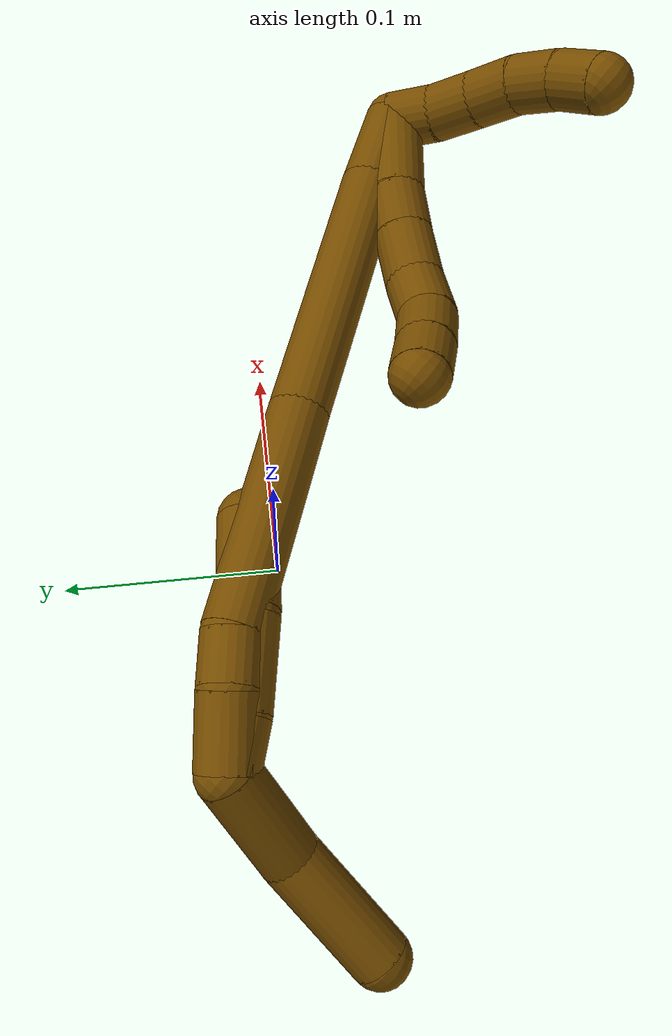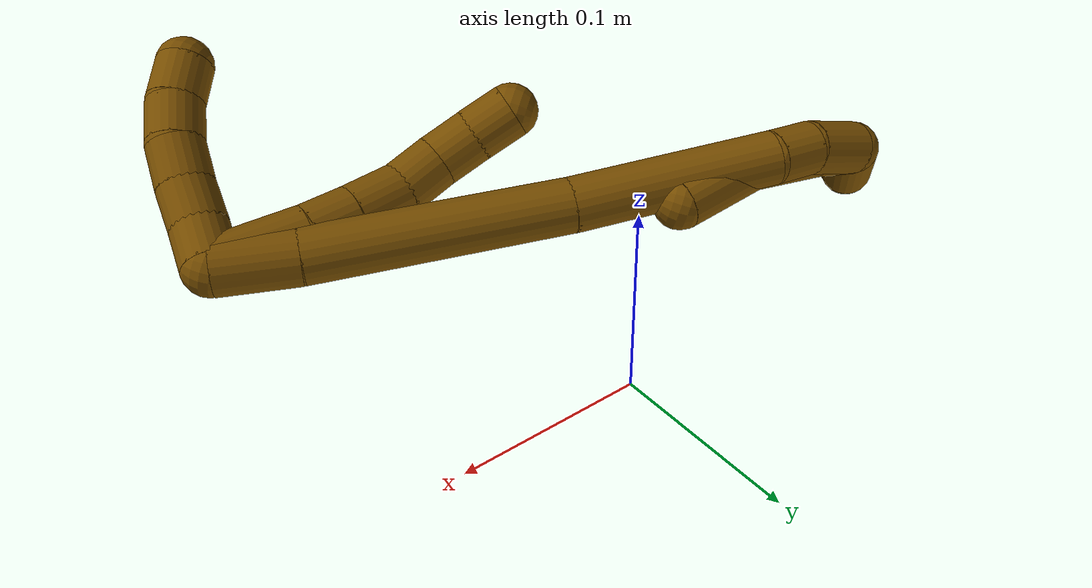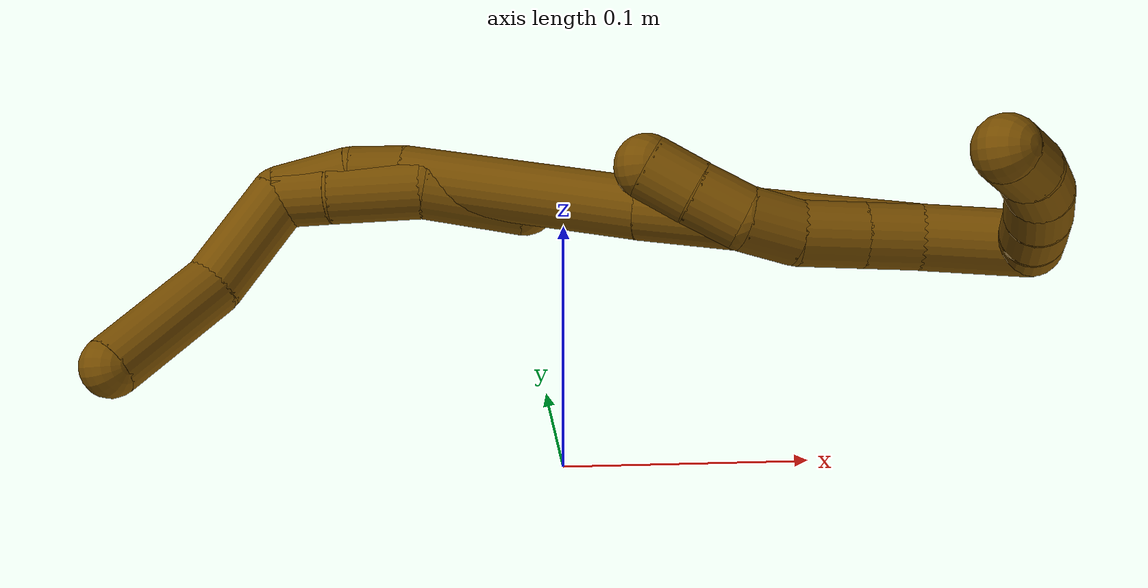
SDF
<sdf version="1.7">
 <world name="default">
  <model name="12">
   <static>0</static>
   <link name="12">
    <collision name="collision-cylinder-e_1_2_8">
     <pose>-0.012938 -0.006267 -0.014721 2.73913 -0.679984 -2.09539</pose>
     <geometry><cylinder><radius>0.0125</radius><length>0.041152</length></cylinder></geometry>
     <surface>
      <friction><ode><mu>1.16</mu><mu2>1.16</mu2><slip1>0</slip1><slip2>0</slip2></ode></friction>
      <contact><ode><kp>1e+06</kp><kd>1</kd><max_vel>0</max_vel><min_depth>0.001</min_depth></ode></contact>
     </surface>
    </collision>
    <visual name="visual-cylinder-e_1_2_8">
     <pose>-0.012938 -0.006267 -0.014721 2.73913 -0.679984 -2.09539</pose>
     <geometry><cylinder><radius>0.0125</radius><length>0.041152</length></cylinder></geometry>
     <material><ambient>0.466667 0.301961 0 1</ambient></material>
    </visual>
    <collision name="collision-cylinder-e_2_8_9">
     <pose>-0.033151 -0.016638 -0.036239 2.59832 -0.741789 -1.89857</pose>
     <geometry><cylinder><radius>0.0125</radius><length>0.021538</length></cylinder></geometry>
     <surface>
      <friction><ode><mu>1.16</mu><mu2>1.16</mu2><slip1>0</slip1><slip2>0</slip2></ode></friction>
      <contact><ode><kp>1e+06</kp><kd>1</kd><max_vel>0</max_vel><min_depth>0.001</min_depth></ode></contact>
     </surface>
    </collision>
    <visual name="visual-cylinder-e_2_8_9">
     <pose>-0.033151 -0.016638 -0.036239 2.59832 -0.741789 -1.89857</pose>
     <geometry><cylinder><radius>0.0125</radius><length>0.021538</length></cylinder></geometry>
     <material><ambient>0.466667 0.301961 0 1</ambient></material>
    </visual>
    <collision name="collision-cylinder-e_3_9_10">
     <pose>-0.049181 -0.025749 -0.05048 2.54957 -0.77308 -1.8555</pose>
     <geometry><cylinder><radius>0.0125</radius><length>0.02507</length></cylinder></geometry>
     <surface>
      <friction><ode><mu>1.16</mu><mu2>1.16</mu2><slip1>0</slip1><slip2>0</slip2></ode></friction>
      <contact><ode><kp>1e+06</kp><kd>1</kd><max_vel>0</max_vel><min_depth>0.001</min_depth></ode></contact>
     </surface>
    </collision>
    <visual name="visual-cylinder-e_3_9_10">
     <pose>-0.049181 -0.025749 -0.05048 2.54957 -0.77308 -1.8555</pose>
     <geometry><cylinder><radius>0.0125</radius><length>0.02507</length></cylinder></geometry>
     <material><ambient>0.466667 0.301961 0 1</ambient></material>
    </visual>
    <collision name="collision-cylinder-e_4_10_11">
     <pose>-0.067039 -0.033307 -0.063319 2.6998 -0.990726 -2.35379</pose>
     <geometry><cylinder><radius>0.0125</radius><length>0.021772</length></cylinder></geometry>
     <surface>
      <friction><ode><mu>1.16</mu><mu2>1.16</mu2><slip1>0</slip1><slip2>0</slip2></ode></friction>
      <contact><ode><kp>1e+06</kp><kd>1</kd><max_vel>0</max_vel><min_depth>0.001</min_depth></ode></contact>
     </surface>
    </collision>
    <visual name="visual-cylinder-e_4_10_11">
     <pose>-0.067039 -0.033307 -0.063319 2.6998 -0.990726 -2.35379</pose>
     <geometry><cylinder><radius>0.0125</radius><length>0.021772</length></cylinder></geometry>
     <material><ambient>0.466667 0.301961 0 1</ambient></material>
    </visual>
    <collision name="collision-cylinder-e_5_11_12">
     <pose>-0.084203 -0.035247 -0.074958 -3.0442 -0.909193 2.94281</pose>
     <geometry><cylinder><radius>0.0125</radius><length>0.020427</length></cylinder></geometry>
     <surface>
      <friction><ode><mu>1.16</mu><mu2>1.16</mu2><slip1>0</slip1><slip2>0</slip2></ode></friction>
      <contact><ode><kp>1e+06</kp><kd>1</kd><max_vel>0</max_vel><min_depth>0.001</min_depth></ode></contact>
     </surface>
    </collision>
    <visual name="visual-cylinder-e_5_11_12">
     <pose>-0.084203 -0.035247 -0.074958 -3.0442 -0.909193 2.94281</pose>
     <geometry><cylinder><radius>0.0125</radius><length>0.020427</length></cylinder></geometry>
     <material><ambient>0.466667 0.301961 0 1</ambient></material>
    </visual>
    <collision name="collision-cylinder-e_6_12_6">
     <pose>-0.099893 -0.033463 -0.08759 -2.95972 -0.865753 2.75195</pose>
     <geometry><cylinder><radius>0.0125</radius><length>0.020042</length></cylinder></geometry>
     <surface>
      <friction><ode><mu>1.16</mu><mu2>1.16</mu2><slip1>0</slip1><slip2>0</slip2></ode></friction>
      <contact><ode><kp>1e+06</kp><kd>1</kd><max_vel>0</max_vel><min_depth>0.001</min_depth></ode></contact>
     </surface>
    </collision>
    <visual name="visual-cylinder-e_6_12_6">
     <pose>-0.099893 -0.033463 -0.08759 -2.95972 -0.865753 2.75195</pose>
     <geometry><cylinder><radius>0.0125</radius><length>0.020042</length></cylinder></geometry>
     <material><ambient>0.466667 0.301961 0 1</ambient></material>
    </visual>
    <collision name="collision-cylinder-e_1_2_13">
     <pose>-0.007187 -0.003513 0.006001 0.52958 -0.801877 -0.228883</pose>
     <geometry><cylinder><radius>0.0125</radius><length>0.02</length></cylinder></geometry>
     <surface>
      <friction><ode><mu>1.16</mu><mu2>1.16</mu2><slip1>0</slip1><slip2>0</slip2></ode></friction>
      <contact><ode><kp>1e+06</kp><kd>1</kd><max_vel>0</max_vel><min_depth>0.001</min_depth></ode></contact>
     </surface>
    </collision>
    <visual name="visual-cylinder-e_1_2_13">
     <pose>-0.007187 -0.003513 0.006001 0.52958 -0.801877 -0.228883</pose>
     <geometry><cylinder><radius>0.0125</radius><length>0.02</length></cylinder></geometry>
     <material><ambient>0.466667 0.301961 0 1</ambient></material>
    </visual>
    <collision name="collision-cylinder-e_2_13_14">
     <pose>-0.021985 -0.008965 0.018191 0.303622 -0.865054 -0.14103</pose>
     <geometry><cylinder><radius>0.0125</radius><length>0.02</length></cylinder></geometry>
     <surface>
      <friction><ode><mu>1.16</mu><mu2>1.16</mu2><slip1>0</slip1><slip2>0</slip2></ode></friction>
      <contact><ode><kp>1e+06</kp><kd>1</kd><max_vel>0</max_vel><min_depth>0.001</min_depth></ode></contact>
     </surface>
    </collision>
    <visual name="visual-cylinder-e_2_13_14">
     <pose>-0.021985 -0.008965 0.018191 0.303622 -0.865054 -0.14103</pose>
     <geometry><cylinder><radius>0.0125</radius><length>0.02</length></cylinder></geometry>
     <material><ambient>0.466667 0.301961 0 1</ambient></material>
    </visual>
    <collision name="collision-cylinder-e_3_14_15">
     <pose>-0.037795 -0.012229 0.029951 0.233568 -0.961225 -0.122185</pose>
     <geometry><cylinder><radius>0.0125</radius><length>0.02</length></cylinder></geometry>
     <surface>
      <friction><ode><mu>1.16</mu><mu2>1.16</mu2><slip1>0</slip1><slip2>0</slip2></ode></friction>
      <contact><ode><kp>1e+06</kp><kd>1</kd><max_vel>0</max_vel><min_depth>0.001</min_depth></ode></contact>
     </surface>
    </collision>
    <visual name="visual-cylinder-e_3_14_15">
     <pose>-0.037795 -0.012229 0.029951 0.233568 -0.961225 -0.122185</pose>
     <geometry><cylinder><radius>0.0125</radius><length>0.02</length></cylinder></geometry>
     <material><ambient>0.466667 0.301961 0 1</ambient></material>
    </visual>
    <collision name="collision-cylinder-e_4_15_16">
     <pose>-0.054853 -0.016075 0.039414 0.574562 -1.08847 -0.353876</pose>
     <geometry><cylinder><radius>0.0125</radius><length>0.02</length></cylinder></geometry>
     <surface>
      <friction><ode><mu>1.16</mu><mu2>1.16</mu2><slip1>0</slip1><slip2>0</slip2></ode></friction>
      <contact><ode><kp>1e+06</kp><kd>1</kd><max_vel>0</max_vel><min_depth>0.001</min_depth></ode></contact>
     </surface>
    </collision>
    <visual name="visual-cylinder-e_4_15_16">
     <pose>-0.054853 -0.016075 0.039414 0.574562 -1.08847 -0.353876</pose>
     <geometry><cylinder><radius>0.0125</radius><length>0.02</length></cylinder></geometry>
     <material><ambient>0.466667 0.301961 0 1</ambient></material>
    </visual>
    <collision name="collision-cylinder-e_5_16_5">
     <pose>-0.073039 -0.021588 0.045321 0.978432 -1.20186 -0.699857</pose>
     <geometry><cylinder><radius>0.0125</radius><length>0.02</length></cylinder></geometry>
     <surface>
      <friction><ode><mu>1.16</mu><mu2>1.16</mu2><slip1>0</slip1><slip2>0</slip2></ode></friction>
      <contact><ode><kp>1e+06</kp><kd>1</kd><max_vel>0</max_vel><min_depth>0.001</min_depth></ode></contact>
     </surface>
    </collision>
    <visual name="visual-cylinder-e_5_16_5">
     <pose>-0.073039 -0.021588 0.045321 0.978432 -1.20186 -0.699857</pose>
     <geometry><cylinder><radius>0.0125</radius><length>0.02</length></cylinder></geometry>
     <material><ambient>0.466667 0.301961 0 1</ambient></material>
    </visual>
    <collision name="collision-cylinder-e_1_2_17">
     <pose>-0.007535 -0.002469 -0.015881 2.98738 -0.438411 -2.47397</pose>
     <geometry><cylinder><radius>0.0125</radius><length>0.035501</length></cylinder></geometry>
     <surface>
      <friction><ode><mu>1.16</mu><mu2>1.16</mu2><slip1>0</slip1><slip2>0</slip2></ode></friction>
      <contact><ode><kp>1e+06</kp><kd>1</kd><max_vel>0</max_vel><min_depth>0.001</min_depth></ode></contact>
     </surface>
    </collision>
    <visual name="visual-cylinder-e_1_2_17">
     <pose>-0.007535 -0.002469 -0.015881 2.98738 -0.438411 -2.47397</pose>
     <geometry><cylinder><radius>0.0125</radius><length>0.035501</length></cylinder></geometry>
     <material><ambient>0.466667 0.301961 0 1</ambient></material>
    </visual>
    <collision name="collision-cylinder-e_2_17_18">
     <pose>-0.043298 -0.012878 -0.081867 2.98442 -0.507773 -2.55232</pose>
     <geometry><cylinder><radius>0.0125</radius><length>0.11611</length></cylinder></geometry>
     <surface>
      <friction><ode><mu>1.16</mu><mu2>1.16</mu2><slip1>0</slip1><slip2>0</slip2></ode></friction>
      <contact><ode><kp>1e+06</kp><kd>1</kd><max_vel>0</max_vel><min_depth>0.001</min_depth></ode></contact>
     </surface>
    </collision>
    <visual name="visual-cylinder-e_2_17_18">
     <pose>-0.043298 -0.012878 -0.081867 2.98442 -0.507773 -2.55232</pose>
     <geometry><cylinder><radius>0.0125</radius><length>0.11611</length></cylinder></geometry>
     <material><ambient>0.466667 0.301961 0 1</ambient></material>
    </visual>
    <collision name="collision-cylinder-e_3_18_19">
     <pose>-0.096885 -0.026752 -0.172867 2.99751 -0.550392 -2.64113</pose>
     <geometry><cylinder><radius>0.0125</radius><length>0.096967</length></cylinder></geometry>
     <surface>
      <friction><ode><mu>1.16</mu><mu2>1.16</mu2><slip1>0</slip1><slip2>0</slip2></ode></friction>
      <contact><ode><kp>1e+06</kp><kd>1</kd><max_vel>0</max_vel><min_depth>0.001</min_depth></ode></contact>
     </surface>
    </collision>
    <visual name="visual-cylinder-e_3_18_19">
     <pose>-0.096885 -0.026752 -0.172867 2.99751 -0.550392 -2.64113</pose>
     <geometry><cylinder><radius>0.0125</radius><length>0.096967</length></cylinder></geometry>
     <material><ambient>0.466667 0.301961 0 1</ambient></material>
    </visual>
    <collision name="collision-cylinder-e_4_19_20">
     <pose>-0.128134 -0.036307 -0.221967 2.72586 -0.581243 -1.91321</pose>
     <geometry><cylinder><radius>0.0125</radius><length>0.021461</length></cylinder></geometry>
     <surface>
      <friction><ode><mu>1.16</mu><mu2>1.16</mu2><slip1>0</slip1><slip2>0</slip2></ode></friction>
      <contact><ode><kp>1e+06</kp><kd>1</kd><max_vel>0</max_vel><min_depth>0.001</min_depth></ode></contact>
     </surface>
    </collision>
    <visual name="visual-cylinder-e_4_19_20">
     <pose>-0.128134 -0.036307 -0.221967 2.72586 -0.581243 -1.91321</pose>
     <geometry><cylinder><radius>0.0125</radius><length>0.021461</length></cylinder></geometry>
     <material><ambient>0.466667 0.301961 0 1</ambient></material>
    </visual>
    <collision name="collision-cylinder-e_5_20_1">
     <pose>-0.139633 -0.047503 -0.241817 2.56494 -0.383616 -1.15942</pose>
     <geometry><cylinder><radius>0.0125</radius><length>0.029961</length></cylinder></geometry>
     <surface>
      <friction><ode><mu>1.16</mu><mu2>1.16</mu2><slip1>0</slip1><slip2>0</slip2></ode></friction>
      <contact><ode><kp>1e+06</kp><kd>1</kd><max_vel>0</max_vel><min_depth>0.001</min_depth></ode></contact>
     </surface>
    </collision>
    <visual name="visual-cylinder-e_5_20_1">
     <pose>-0.139633 -0.047503 -0.241817 2.56494 -0.383616 -1.15942</pose>
     <geometry><cylinder><radius>0.0125</radius><length>0.029961</length></cylinder></geometry>
     <material><ambient>0.466667 0.301961 0 1</ambient></material>
    </visual>
    <collision name="collision-cylinder-e_1_1_21">
     <pose>-0.146418 -0.077081 -0.259194 1.82563 -0.051784 -0.066991</pose>
     <geometry><cylinder><radius>0.0125</radius><length>0.045536</length></cylinder></geometry>
     <surface>
      <friction><ode><mu>1.16</mu><mu2>1.16</mu2><slip1>0</slip1><slip2>0</slip2></ode></friction>
      <contact><ode><kp>1e+06</kp><kd>1</kd><max_vel>0</max_vel><min_depth>0.001</min_depth></ode></contact>
     </surface>
    </collision>
    <visual name="visual-cylinder-e_1_1_21">
     <pose>-0.146418 -0.077081 -0.259194 1.82563 -0.051784 -0.066991</pose>
     <geometry><cylinder><radius>0.0125</radius><length>0.045536</length></cylinder></geometry>
     <material><ambient>0.466667 0.301961 0 1</ambient></material>
    </visual>
    <collision name="collision-cylinder-e_2_21_4">
     <pose>-0.156789 -0.124328 -0.269376 1.7453 -0.344337 -0.40867</pose>
     <geometry><cylinder><radius>0.0125</radius><length>0.054464</length></cylinder></geometry>
     <surface>
      <friction><ode><mu>1.16</mu><mu2>1.16</mu2><slip1>0</slip1><slip2>0</slip2></ode></friction>
      <contact><ode><kp>1e+06</kp><kd>1</kd><max_vel>0</max_vel><min_depth>0.001</min_depth></ode></contact>
     </surface>
    </collision>
    <visual name="visual-cylinder-e_2_21_4">
     <pose>-0.156789 -0.124328 -0.269376 1.7453 -0.344337 -0.40867</pose>
     <geometry><cylinder><radius>0.0125</radius><length>0.054464</length></cylinder></geometry>
     <material><ambient>0.466667 0.301961 0 1</ambient></material>
    </visual>
    <collision name="collision-cylinder-e_1_1_22">
     <pose>-0.140702 -0.051924 -0.244218 -0.32878 0.434919 -0.073274</pose>
     <geometry><cylinder><radius>0.0125</radius><length>0.021539</length></cylinder></geometry>
     <surface>
      <friction><ode><mu>1.16</mu><mu2>1.16</mu2><slip1>0</slip1><slip2>0</slip2></ode></friction>
      <contact><ode><kp>1e+06</kp><kd>1</kd><max_vel>0</max_vel><min_depth>0.001</min_depth></ode></contact>
     </surface>
    </collision>
    <visual name="visual-cylinder-e_1_1_22">
     <pose>-0.140702 -0.051924 -0.244218 -0.32878 0.434919 -0.073274</pose>
     <geometry><cylinder><radius>0.0125</radius><length>0.021539</length></cylinder></geometry>
     <material><ambient>0.466667 0.301961 0 1</ambient></material>
    </visual>
    <collision name="collision-cylinder-e_2_22_23">
     <pose>-0.12674 -0.04221 -0.220155 -0.416724 0.526706 -0.113886</pose>
     <geometry><cylinder><radius>0.0125</radius><length>0.037495</length></cylinder></geometry>
     <surface>
      <friction><ode><mu>1.16</mu><mu2>1.16</mu2><slip1>0</slip1><slip2>0</slip2></ode></friction>
      <contact><ode><kp>1e+06</kp><kd>1</kd><max_vel>0</max_vel><min_depth>0.001</min_depth></ode></contact>
     </surface>
    </collision>
    <visual name="visual-cylinder-e_2_22_23">
     <pose>-0.12674 -0.04221 -0.220155 -0.416724 0.526706 -0.113886</pose>
     <geometry><cylinder><radius>0.0125</radius><length>0.037495</length></cylinder></geometry>
     <material><ambient>0.466667 0.301961 0 1</ambient></material>
    </visual>
    <collision name="collision-cylinder-e_3_23_3">
     <pose>-0.102794 -0.030706 -0.191762 -0.34932 0.788044 -0.146467</pose>
     <geometry><cylinder><radius>0.0125</radius><length>0.040966</length></cylinder></geometry>
     <surface>
      <friction><ode><mu>1.16</mu><mu2>1.16</mu2><slip1>0</slip1><slip2>0</slip2></ode></friction>
      <contact><ode><kp>1e+06</kp><kd>1</kd><max_vel>0</max_vel><min_depth>0.001</min_depth></ode></contact>
     </surface>
    </collision>
    <visual name="visual-cylinder-e_3_23_3">
     <pose>-0.102794 -0.030706 -0.191762 -0.34932 0.788044 -0.146467</pose>
     <geometry><cylinder><radius>0.0125</radius><length>0.040966</length></cylinder></geometry>
     <material><ambient>0.466667 0.301961 0 1</ambient></material>
    </visual>
    <collision name="collision-sphere-3">
     <pose>-0.088272 -0.025762 -0.178189 0 -0 0</pose>
     <geometry><sphere><radius>0.0125</radius></sphere></geometry>
     <surface>
      <friction><ode><mu>1.16</mu><mu2>1.16</mu2><slip1>0</slip1><slip2>0</slip2></ode></friction>
      <contact><ode><kp>1e+06</kp><kd>1</kd><max_vel>0</max_vel><min_depth>0.001</min_depth></ode></contact>
     </surface>
    </collision>
    <visual name="visual-sphere-3">
     <pose>-0.088272 -0.025762 -0.178189 0 -0 0</pose>
     <geometry><sphere><radius>0.0125</radius></sphere></geometry>
     <material><ambient>0.466667 0.301961 0 1</ambient></material>
    </visual>
    <collision name="collision-sphere-23">
     <pose>-0.117316 -0.03565 -0.205335 0 -0 0</pose>
     <geometry><sphere><radius>0.0125</radius></sphere></geometry>
     <surface>
      <friction><ode><mu>1.16</mu><mu2>1.16</mu2><slip1>0</slip1><slip2>0</slip2></ode></friction>
      <contact><ode><kp>1e+06</kp><kd>1</kd><max_vel>0</max_vel><min_depth>0.001</min_depth></ode></contact>
     </surface>
    </collision>
    <visual name="visual-sphere-23">
     <pose>-0.117316 -0.03565 -0.205335 0 -0 0</pose>
     <geometry><sphere><radius>0.0125</radius></sphere></geometry>
     <material><ambient>0.466667 0.301961 0 1</ambient></material>
    </visual>
    <collision name="collision-sphere-22">
     <pose>-0.136165 -0.04877 -0.234975 0 -0 0</pose>
     <geometry><sphere><radius>0.0125</radius></sphere></geometry>
     <surface>
      <friction><ode><mu>1.16</mu><mu2>1.16</mu2><slip1>0</slip1><slip2>0</slip2></ode></friction>
      <contact><ode><kp>1e+06</kp><kd>1</kd><max_vel>0</max_vel><min_depth>0.001</min_depth></ode></contact>
     </surface>
    </collision>
    <visual name="visual-sphere-22">
     <pose>-0.136165 -0.04877 -0.234975 0 -0 0</pose>
     <geometry><sphere><radius>0.0125</radius></sphere></geometry>
     <material><ambient>0.466667 0.301961 0 1</ambient></material>
    </visual>
    <collision name="collision-sphere-4">
     <pose>-0.165982 -0.149572 -0.273826 0 -0 0</pose>
     <geometry><sphere><radius>0.0125</radius></sphere></geometry>
     <surface>
      <friction><ode><mu>1.16</mu><mu2>1.16</mu2><slip1>0</slip1><slip2>0</slip2></ode></friction>
      <contact><ode><kp>1e+06</kp><kd>1</kd><max_vel>0</max_vel><min_depth>0.001</min_depth></ode></contact>
     </surface>
    </collision>
    <visual name="visual-sphere-4">
     <pose>-0.165982 -0.149572 -0.273826 0 -0 0</pose>
     <geometry><sphere><radius>0.0125</radius></sphere></geometry>
     <material><ambient>0.466667 0.301961 0 1</ambient></material>
    </visual>
    <collision name="collision-sphere-21">
     <pose>-0.147597 -0.099084 -0.264925 0 -0 0</pose>
     <geometry><sphere><radius>0.0125</radius></sphere></geometry>
     <surface>
      <friction><ode><mu>1.16</mu><mu2>1.16</mu2><slip1>0</slip1><slip2>0</slip2></ode></friction>
      <contact><ode><kp>1e+06</kp><kd>1</kd><max_vel>0</max_vel><min_depth>0.001</min_depth></ode></contact>
     </surface>
    </collision>
    <visual name="visual-sphere-21">
     <pose>-0.147597 -0.099084 -0.264925 0 -0 0</pose>
     <geometry><sphere><radius>0.0125</radius></sphere></geometry>
     <material><ambient>0.466667 0.301961 0 1</ambient></material>
    </visual>
    <collision name="collision-sphere-1">
     <pose>-0.14524 -0.055077 -0.253462 0 -0 0</pose>
     <geometry><sphere><radius>0.0125</radius></sphere></geometry>
     <surface>
      <friction><ode><mu>1.16</mu><mu2>1.16</mu2><slip1>0</slip1><slip2>0</slip2></ode></friction>
      <contact><ode><kp>1e+06</kp><kd>1</kd><max_vel>0</max_vel><min_depth>0.001</min_depth></ode></contact>
     </surface>
    </collision>
    <visual name="visual-sphere-1">
     <pose>-0.14524 -0.055077 -0.253462 0 -0 0</pose>
     <geometry><sphere><radius>0.0125</radius></sphere></geometry>
     <material><ambient>0.466667 0.301961 0 1</ambient></material>
    </visual>
    <collision name="collision-sphere-12">
     <pose>-0.092261 -0.034637 -0.081203 0 -0 0</pose>
     <geometry><sphere><radius>0.0125</radius></sphere></geometry>
     <surface>
      <friction><ode><mu>1.16</mu><mu2>1.16</mu2><slip1>0</slip1><slip2>0</slip2></ode></friction>
      <contact><ode><kp>1e+06</kp><kd>1</kd><max_vel>0</max_vel><min_depth>0.001</min_depth></ode></contact>
     </surface>
    </collision>
    <visual name="visual-sphere-12">
     <pose>-0.092261 -0.034637 -0.081203 0 -0 0</pose>
     <geometry><sphere><radius>0.0125</radius></sphere></geometry>
     <material><ambient>0.466667 0.301961 0 1</ambient></material>
    </visual>
    <collision name="collision-sphere-11">
     <pose>-0.076145 -0.035858 -0.068712 0 -0 0</pose>
     <geometry><sphere><radius>0.0125</radius></sphere></geometry>
     <surface>
      <friction><ode><mu>1.16</mu><mu2>1.16</mu2><slip1>0</slip1><slip2>0</slip2></ode></friction>
      <contact><ode><kp>1e+06</kp><kd>1</kd><max_vel>0</max_vel><min_depth>0.001</min_depth></ode></contact>
     </surface>
    </collision>
    <visual name="visual-sphere-11">
     <pose>-0.076145 -0.035858 -0.068712 0 -0 0</pose>
     <geometry><sphere><radius>0.0125</radius></sphere></geometry>
     <material><ambient>0.466667 0.301961 0 1</ambient></material>
    </visual>
    <collision name="collision-sphere-10">
     <pose>-0.057934 -0.030756 -0.057926 0 -0 0</pose>
     <geometry><sphere><radius>0.0125</radius></sphere></geometry>
     <surface>
      <friction><ode><mu>1.16</mu><mu2>1.16</mu2><slip1>0</slip1><slip2>0</slip2></ode></friction>
      <contact><ode><kp>1e+06</kp><kd>1</kd><max_vel>0</max_vel><min_depth>0.001</min_depth></ode></contact>
     </surface>
    </collision>
    <visual name="visual-sphere-10">
     <pose>-0.057934 -0.030756 -0.057926 0 -0 0</pose>
     <geometry><sphere><radius>0.0125</radius></sphere></geometry>
     <material><ambient>0.466667 0.301961 0 1</ambient></material>
    </visual>
    <collision name="collision-sphere-9">
     <pose>-0.040427 -0.020742 -0.043035 0 -0 0</pose>
     <geometry><sphere><radius>0.0125</radius></sphere></geometry>
     <surface>
      <friction><ode><mu>1.16</mu><mu2>1.16</mu2><slip1>0</slip1><slip2>0</slip2></ode></friction>
      <contact><ode><kp>1e+06</kp><kd>1</kd><max_vel>0</max_vel><min_depth>0.001</min_depth></ode></contact>
     </surface>
    </collision>
    <visual name="visual-sphere-9">
     <pose>-0.040427 -0.020742 -0.043035 0 -0 0</pose>
     <geometry><sphere><radius>0.0125</radius></sphere></geometry>
     <material><ambient>0.466667 0.301961 0 1</ambient></material>
    </visual>
    <collision name="collision-sphere-2">
     <geometry><sphere><radius>0.0125</radius></sphere></geometry>
     <surface>
      <friction><ode><mu>1.16</mu><mu2>1.16</mu2><slip1>0</slip1><slip2>0</slip2></ode></friction>
      <contact><ode><kp>1e+06</kp><kd>1</kd><max_vel>0</max_vel><min_depth>0.001</min_depth></ode></contact>
     </surface>
    </collision>
    <visual name="visual-sphere-2">
     <geometry><sphere><radius>0.0125</radius></sphere></geometry>
     <material><ambient>0.466667 0.301961 0 1</ambient></material>
    </visual>
    <collision name="collision-sphere-19">
     <pose>-0.122242 -0.032685 -0.213762 0 -0 0</pose>
     <geometry><sphere><radius>0.0125</radius></sphere></geometry>
     <surface>
      <friction><ode><mu>1.16</mu><mu2>1.16</mu2><slip1>0</slip1><slip2>0</slip2></ode></friction>
      <contact><ode><kp>1e+06</kp><kd>1</kd><max_vel>0</max_vel><min_depth>0.001</min_depth></ode></contact>
     </surface>
    </collision>
    <visual name="visual-sphere-19">
     <pose>-0.122242 -0.032685 -0.213762 0 -0 0</pose>
     <geometry><sphere><radius>0.0125</radius></sphere></geometry>
     <material><ambient>0.466667 0.301961 0 1</ambient></material>
    </visual>
    <collision name="collision-sphere-8">
     <pose>-0.025875 -0.012533 -0.029442 0 -0 0</pose>
     <geometry><sphere><radius>0.0125</radius></sphere></geometry>
     <surface>
      <friction><ode><mu>1.16</mu><mu2>1.16</mu2><slip1>0</slip1><slip2>0</slip2></ode></friction>
      <contact><ode><kp>1e+06</kp><kd>1</kd><max_vel>0</max_vel><min_depth>0.001</min_depth></ode></contact>
     </surface>
    </collision>
    <visual name="visual-sphere-8">
     <pose>-0.025875 -0.012533 -0.029442 0 -0 0</pose>
     <geometry><sphere><radius>0.0125</radius></sphere></geometry>
     <material><ambient>0.466667 0.301961 0 1</ambient></material>
    </visual>
    <collision name="collision-sphere-6">
     <pose>-0.107525 -0.032288 -0.093977 0 -0 0</pose>
     <geometry><sphere><radius>0.0125</radius></sphere></geometry>
     <surface>
      <friction><ode><mu>1.16</mu><mu2>1.16</mu2><slip1>0</slip1><slip2>0</slip2></ode></friction>
      <contact><ode><kp>1e+06</kp><kd>1</kd><max_vel>0</max_vel><min_depth>0.001</min_depth></ode></contact>
     </surface>
    </collision>
    <visual name="visual-sphere-6">
     <pose>-0.107525 -0.032288 -0.093977 0 -0 0</pose>
     <geometry><sphere><radius>0.0125</radius></sphere></geometry>
     <material><ambient>0.466667 0.301961 0 1</ambient></material>
    </visual>
    <collision name="collision-sphere-13">
     <pose>-0.014373 -0.007026 0.012002 0 -0 0</pose>
     <geometry><sphere><radius>0.0125</radius></sphere></geometry>
     <surface>
      <friction><ode><mu>1.16</mu><mu2>1.16</mu2><slip1>0</slip1><slip2>0</slip2></ode></friction>
      <contact><ode><kp>1e+06</kp><kd>1</kd><max_vel>0</max_vel><min_depth>0.001</min_depth></ode></contact>
     </surface>
    </collision>
    <visual name="visual-sphere-13">
     <pose>-0.014373 -0.007026 0.012002 0 -0 0</pose>
     <geometry><sphere><radius>0.0125</radius></sphere></geometry>
     <material><ambient>0.466667 0.301961 0 1</ambient></material>
    </visual>
    <collision name="collision-sphere-14">
     <pose>-0.029596 -0.010904 0.024381 0 -0 0</pose>
     <geometry><sphere><radius>0.0125</radius></sphere></geometry>
     <surface>
      <friction><ode><mu>1.16</mu><mu2>1.16</mu2><slip1>0</slip1><slip2>0</slip2></ode></friction>
      <contact><ode><kp>1e+06</kp><kd>1</kd><max_vel>0</max_vel><min_depth>0.001</min_depth></ode></contact>
     </surface>
    </collision>
    <visual name="visual-sphere-14">
     <pose>-0.029596 -0.010904 0.024381 0 -0 0</pose>
     <geometry><sphere><radius>0.0125</radius></sphere></geometry>
     <material><ambient>0.466667 0.301961 0 1</ambient></material>
    </visual>
    <collision name="collision-sphere-15">
     <pose>-0.045994 -0.013554 0.03552 0 -0 0</pose>
     <geometry><sphere><radius>0.0125</radius></sphere></geometry>
     <surface>
      <friction><ode><mu>1.16</mu><mu2>1.16</mu2><slip1>0</slip1><slip2>0</slip2></ode></friction>
      <contact><ode><kp>1e+06</kp><kd>1</kd><max_vel>0</max_vel><min_depth>0.001</min_depth></ode></contact>
     </surface>
    </collision>
    <visual name="visual-sphere-15">
     <pose>-0.045994 -0.013554 0.03552 0 -0 0</pose>
     <geometry><sphere><radius>0.0125</radius></sphere></geometry>
     <material><ambient>0.466667 0.301961 0 1</ambient></material>
    </visual>
    <collision name="collision-sphere-16">
     <pose>-0.063712 -0.018596 0.043308 0 -0 0</pose>
     <geometry><sphere><radius>0.0125</radius></sphere></geometry>
     <surface>
      <friction><ode><mu>1.16</mu><mu2>1.16</mu2><slip1>0</slip1><slip2>0</slip2></ode></friction>
      <contact><ode><kp>1e+06</kp><kd>1</kd><max_vel>0</max_vel><min_depth>0.001</min_depth></ode></contact>
     </surface>
    </collision>
    <visual name="visual-sphere-16">
     <pose>-0.063712 -0.018596 0.043308 0 -0 0</pose>
     <geometry><sphere><radius>0.0125</radius></sphere></geometry>
     <material><ambient>0.466667 0.301961 0 1</ambient></material>
    </visual>
    <collision name="collision-sphere-5">
     <pose>-0.082366 -0.024579 0.047334 0 -0 0</pose>
     <geometry><sphere><radius>0.0125</radius></sphere></geometry>
     <surface>
      <friction><ode><mu>1.16</mu><mu2>1.16</mu2><slip1>0</slip1><slip2>0</slip2></ode></friction>
      <contact><ode><kp>1e+06</kp><kd>1</kd><max_vel>0</max_vel><min_depth>0.001</min_depth></ode></contact>
     </surface>
    </collision>
    <visual name="visual-sphere-5">
     <pose>-0.082366 -0.024579 0.047334 0 -0 0</pose>
     <geometry><sphere><radius>0.0125</radius></sphere></geometry>
     <material><ambient>0.466667 0.301961 0 1</ambient></material>
    </visual>
    <collision name="collision-sphere-17">
     <pose>-0.01507 -0.004937 -0.031762 0 -0 0</pose>
     <geometry><sphere><radius>0.0125</radius></sphere></geometry>
     <surface>
      <friction><ode><mu>1.16</mu><mu2>1.16</mu2><slip1>0</slip1><slip2>0</slip2></ode></friction>
      <contact><ode><kp>1e+06</kp><kd>1</kd><max_vel>0</max_vel><min_depth>0.001</min_depth></ode></contact>
     </surface>
    </collision>
    <visual name="visual-sphere-17">
     <pose>-0.01507 -0.004937 -0.031762 0 -0 0</pose>
     <geometry><sphere><radius>0.0125</radius></sphere></geometry>
     <material><ambient>0.466667 0.301961 0 1</ambient></material>
    </visual>
    <collision name="collision-sphere-18">
     <pose>-0.071527 -0.020818 -0.131972 0 -0 0</pose>
     <geometry><sphere><radius>0.0125</radius></sphere></geometry>
     <surface>
      <friction><ode><mu>1.16</mu><mu2>1.16</mu2><slip1>0</slip1><slip2>0</slip2></ode></friction>
      <contact><ode><kp>1e+06</kp><kd>1</kd><max_vel>0</max_vel><min_depth>0.001</min_depth></ode></contact>
     </surface>
    </collision>
    <visual name="visual-sphere-18">
     <pose>-0.071527 -0.020818 -0.131972 0 -0 0</pose>
     <geometry><sphere><radius>0.0125</radius></sphere></geometry>
     <material><ambient>0.466667 0.301961 0 1</ambient></material>
    </visual>
    <collision name="collision-sphere-20">
     <pose>-0.134026 -0.039929 -0.230171 0 -0 0</pose>
     <geometry><sphere><radius>0.0125</radius></sphere></geometry>
     <surface>
      <friction><ode><mu>1.16</mu><mu2>1.16</mu2><slip1>0</slip1><slip2>0</slip2></ode></friction>
      <contact><ode><kp>1e+06</kp><kd>1</kd><max_vel>0</max_vel><min_depth>0.001</min_depth></ode></contact>
     </surface>
    </collision>
    <visual name="visual-sphere-20">
     <pose>-0.134026 -0.039929 -0.230171 0 -0 0</pose>
     <geometry><sphere><radius>0.0125</radius></sphere></geometry>
     <material><ambient>0.466667 0.301961 0 1</ambient></material>
    </visual>
    <inertial>
     <pose>-0.080509 -0.033659 -0.121633 0 -0 0</pose>
     <mass>0.75</mass>
     <inertia>
      <ixx>-0.000274</ixx>
      <ixy>0</ixy>
      <ixz>0</ixz>
      <iyy>8.7e-05</iyy>
      <iyz>0</iyz>
      <izz>0.000163</izz>
     </inertia>
    </inertial>
   </link>
   <pose>0.169255 -0.069556 0.106739 1.22468 0.766106 0.502583</pose>
  </model>
 </world>
</sdf>
